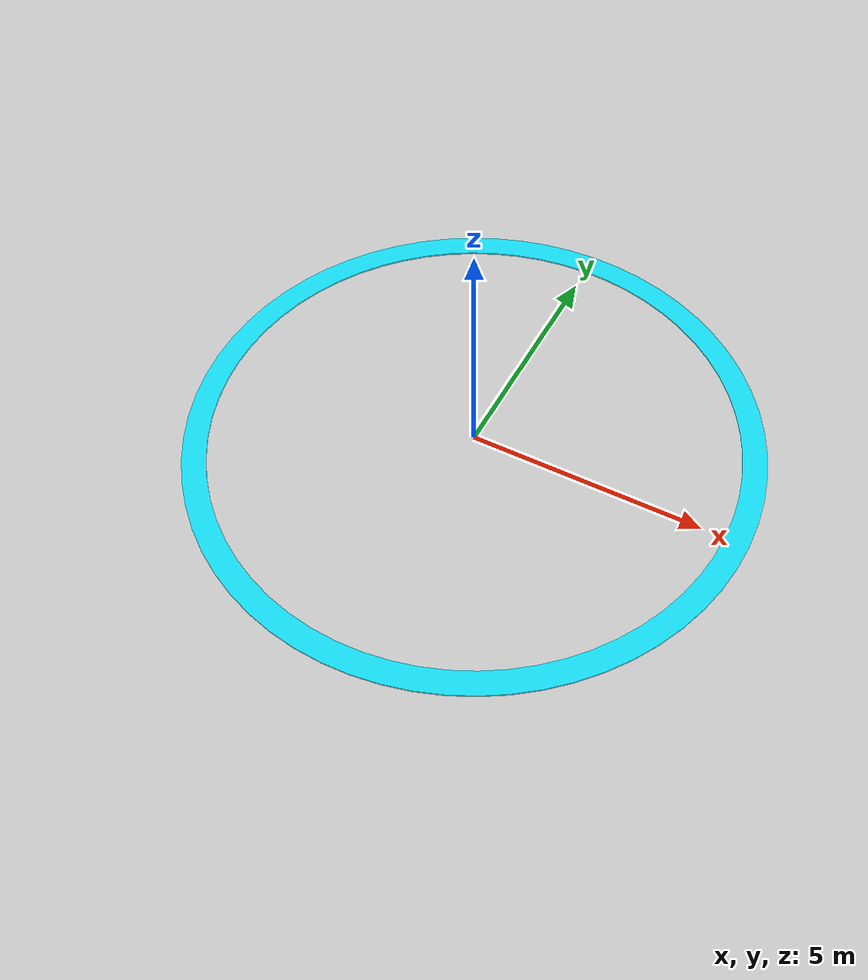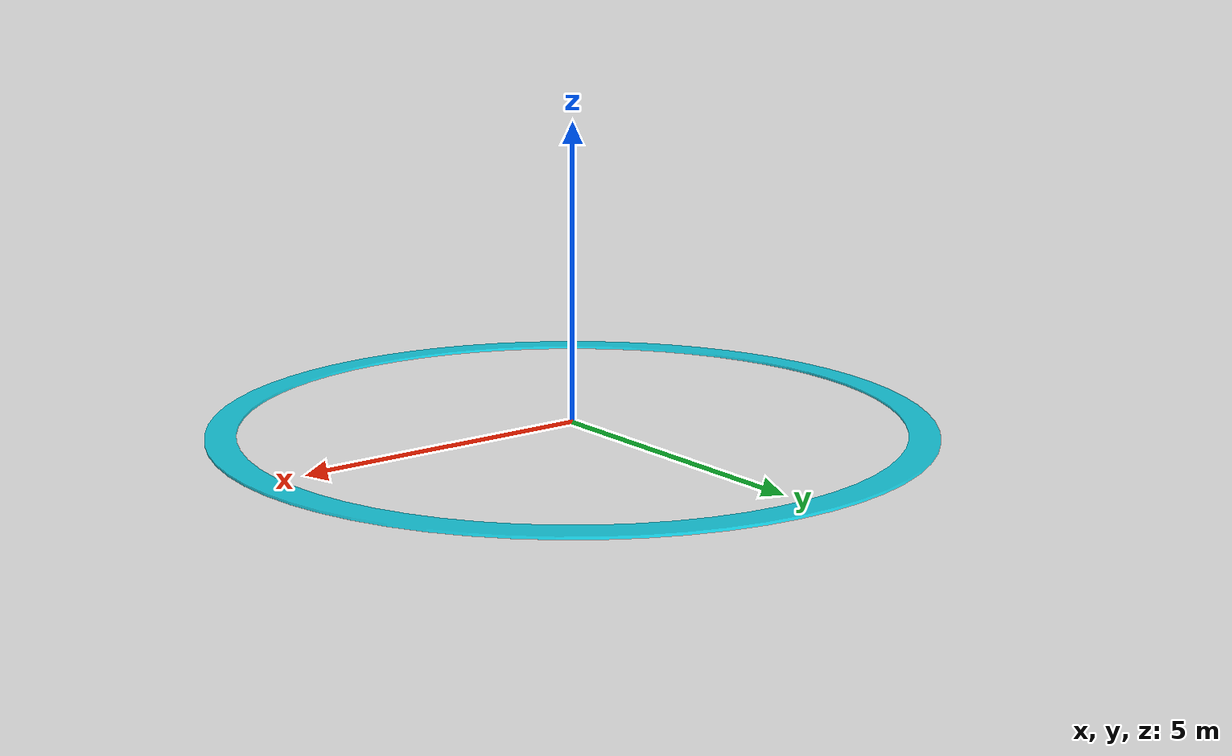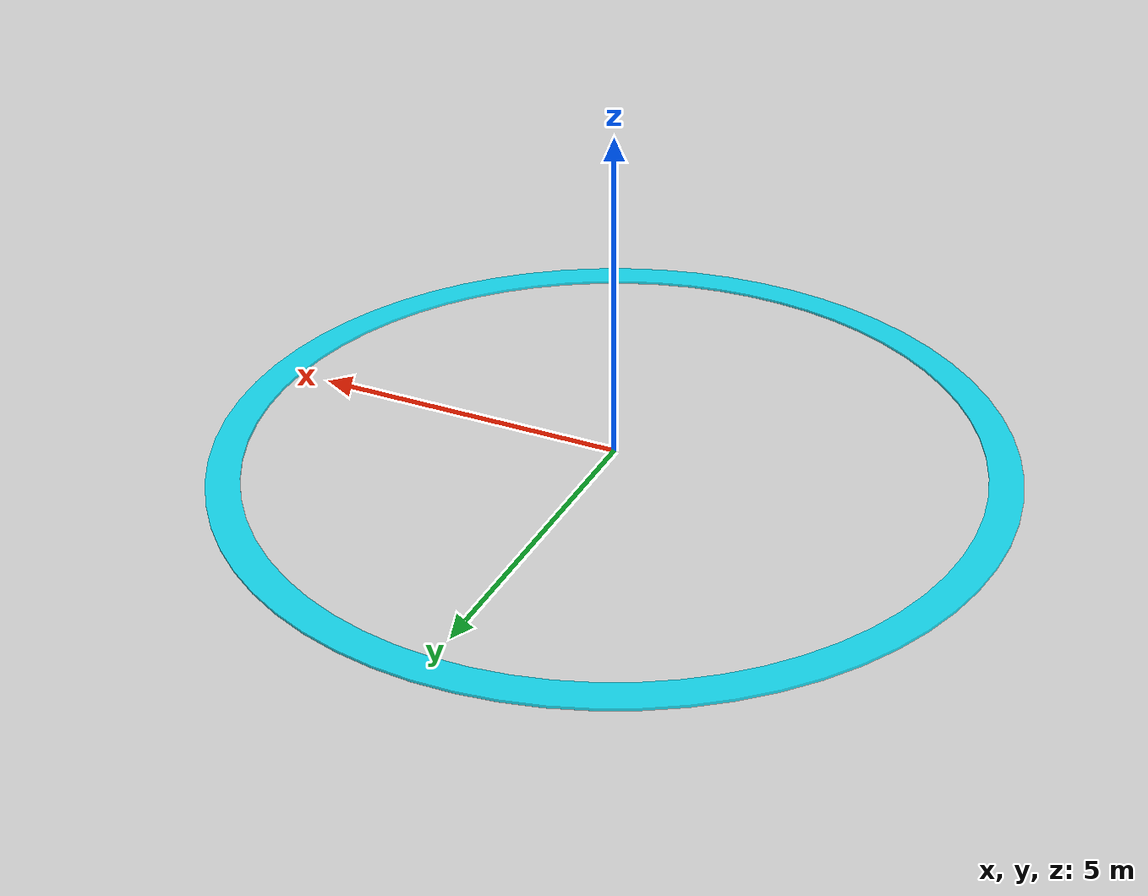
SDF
<?xml version="1.0"?>
<sdf version="1.6">
  <model name="reticle">
    <static>true</static>
    <link name="link">
      <visual name="visual">
        <pose>0 0 0.02 0 0 0</pose>
        <geometry>
          <mesh>
            <uri>file://MESH_DIR/reticle.stl</uri>
          </mesh>
        </geometry>
        <material>
          <ambient>0.0 0.9 1.0 0.85</ambient>
          <diffuse>0.0 0.9 1.0 0.85</diffuse>
          <specular>0.2 0.2 0.2 1.0</specular>
          <emissive>0.0 0.9 1.0 1.0</emissive>
        </material>
        <cast_shadows>false</cast_shadows>
      </visual>
    </link>
  </model>
</sdf>
